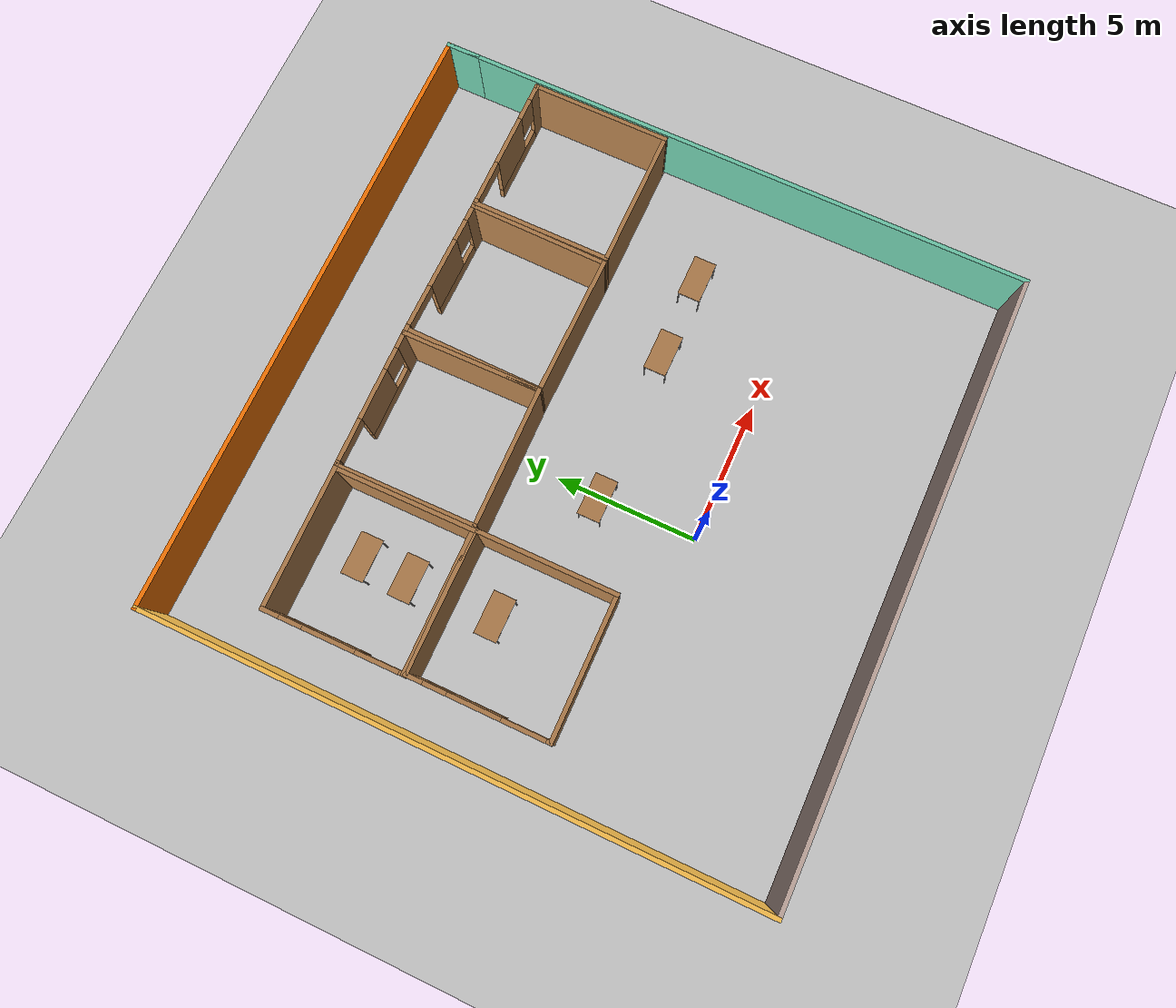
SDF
<sdf version="1.6">
 <world name="default">
  <model name="ground_plane">
   <static>1</static>
   <link name="link">
    <collision name="collision">
     <geometry><plane><normal>0 0 1</normal><size>100 100</size></plane></geometry>
     <surface>
      <contact><collide_bitmask>65535</collide_bitmask></contact>
      <friction><ode><mu>100</mu><mu2>50</mu2></ode></friction>
     </surface>
    </collision>
    <visual name="visual">
     <cast_shadows>0</cast_shadows>
     <geometry><plane><normal>0 0 1</normal><size>100 100</size></plane></geometry>
     <material>
      <script><uri>file://media/materials/scripts/gazebo.material</uri><name>Gazebo/Grey</name></script>
     </material>
    </visual>
   </link>
  </model>
  <model name="studio">
   <pose>9.41356 8.87492 0 0 -0 3.14131</pose>
   <link name="Wall_10">
    <collision name="Wall_10_Collision">
     <geometry><box><size>5 0.15 2.5</size></box></geometry>
     <pose>0 0 1.25 0 -0 0</pose>
    </collision>
    <visual name="Wall_10_Visual">
     <pose>0 0 1.25 0 -0 0</pose>
     <geometry><box><size>5 0.15 2.5</size></box></geometry>
     <material>
      <script><uri>file://media/materials/scripts/gazebo.material</uri><name>Gazebo/Wood</name></script>
      <ambient>1 1 1 1</ambient>
     </material>
     <meta><layer>0</layer></meta>
    </visual>
    <pose>0 2.42482 0 0 0 -7.3e-05</pose>
   </link>
   <link name="Wall_13">
    <collision name="Wall_13_Collision">
     <geometry><box><size>5 0.15 2.5</size></box></geometry>
     <pose>0 0 1.25 0 -0 0</pose>
    </collision>
    <visual name="Wall_13_Visual">
     <pose>0 0 1.25 0 -0 0</pose>
     <geometry><box><size>5 0.15 2.5</size></box></geometry>
     <material>
      <script><uri>file://media/materials/scripts/gazebo.material</uri><name>Gazebo/Wood</name></script>
      <ambient>1 1 1 1</ambient>
     </material>
     <meta><layer>0</layer></meta>
    </visual>
    <pose>-2.42502 -3e-06 0 0 0 -1.5708</pose>
   </link>
   <link name="Wall_15">
    <pose>-2e-05 -2.425 0 0 -0 0</pose>
    <visual name="Wall_15_Visual_0">
     <pose>-2.17395 0 1.25 0 -0 0</pose>
     <geometry><box><size>0.652095 0.15 2.5</size></box></geometry>
     <material>
      <script><uri>file://media/materials/scripts/gazebo.material</uri><name>Gazebo/Wood</name></script>
      <ambient>1 1 1 1</ambient>
     </material>
     <meta><layer>0</layer></meta>
    </visual>
    <collision name="Wall_15_Collision_0">
     <geometry><box><size>0.652095 0.15 2.5</size></box></geometry>
     <pose>-2.17395 0 1.25 0 -0 0</pose>
    </collision>
    <visual name="Wall_15_Visual_1">
     <pose>2.38574 0 1.25 0 -0 0</pose>
     <geometry><box><size>0.228515 0.15 2.5</size></box></geometry>
     <material>
      <script><uri>file://media/materials/scripts/gazebo.material</uri><name>Gazebo/Wood</name></script>
      <ambient>1 1 1 1</ambient>
     </material>
     <meta><layer>0</layer></meta>
    </visual>
    <collision name="Wall_15_Collision_1">
     <geometry><box><size>0.228515 0.15 2.5</size></box></geometry>
     <pose>2.38574 0 1.25 0 -0 0</pose>
    </collision>
    <visual name="Wall_15_Visual_2">
     <pose>-0.53821 0 0.25 0 -0 0</pose>
     <geometry><box><size>2.61939 0.15 0.5</size></box></geometry>
     <material>
      <script><uri>file://media/materials/scripts/gazebo.material</uri><name>Gazebo/Wood</name></script>
      <ambient>1 1 1 1</ambient>
     </material>
     <meta><layer>0</layer></meta>
    </visual>
    <collision name="Wall_15_Collision_2">
     <geometry><box><size>2.61939 0.15 0.5</size></box></geometry>
     <pose>-0.53821 0 0.25 0 -0 0</pose>
    </collision>
    <visual name="Wall_15_Visual_3">
     <pose>-0.13821 0 1.5 0 -0 0</pose>
     <geometry><box><size>1.81939 0.15 2</size></box></geometry>
     <material>
      <script><uri>file://media/materials/scripts/gazebo.material</uri><name>Gazebo/Wood</name></script>
      <ambient>1 1 1 1</ambient>
     </material>
     <meta><layer>0</layer></meta>
    </visual>
    <collision name="Wall_15_Collision_3">
     <geometry><box><size>1.81939 0.15 2</size></box></geometry>
     <pose>-0.13821 0 1.5 0 -0 0</pose>
    </collision>
    <visual name="Wall_15_Visual_4">
     <pose>-1.4479 0 1.9 0 -0 0</pose>
     <geometry><box><size>0.8 0.15 1.2</size></box></geometry>
     <material>
      <script><uri>file://media/materials/scripts/gazebo.material</uri><name>Gazebo/Wood</name></script>
      <ambient>1 1 1 1</ambient>
     </material>
     <meta><layer>0</layer></meta>
    </visual>
    <collision name="Wall_15_Collision_4">
     <geometry><box><size>0.8 0.15 1.2</size></box></geometry>
     <pose>-1.4479 0 1.9 0 -0 0</pose>
    </collision>
    <visual name="Wall_15_Visual_5">
     <pose>1.52148 0 2.25 0 -0 0</pose>
     <geometry><box><size>1.5 0.15 0.5</size></box></geometry>
     <material>
      <script><uri>file://media/materials/scripts/gazebo.material</uri><name>Gazebo/Wood</name></script>
      <ambient>1 1 1 1</ambient>
     </material>
     <meta><layer>0</layer></meta>
    </visual>
    <collision name="Wall_15_Collision_5">
     <geometry><box><size>1.5 0.15 0.5</size></box></geometry>
     <pose>1.52148 0 2.25 0 -0 0</pose>
    </collision>
   </link>
   <link name="Wall_16">
    <collision name="Wall_16_Collision">
     <geometry><box><size>4.99965 0.15 2.5</size></box></geometry>
     <pose>0 0 1.25 0 -0 0</pose>
    </collision>
    <visual name="Wall_16_Visual">
     <pose>0 0 1.25 0 -0 0</pose>
     <geometry><box><size>4.99965 0.15 2.5</size></box></geometry>
     <material>
      <script><uri>file://media/materials/scripts/gazebo.material</uri><name>Gazebo/Wood</name></script>
      <ambient>1 1 1 1</ambient>
     </material>
     <meta><layer>0</layer></meta>
    </visual>
    <pose>2.425 -0.00018 0 0 -0 1.57079</pose>
   </link>
   <static>1</static>
  </model>
  <model name="studio_0">
   <pose>4.40677 8.90584 0 0 -0 3.12886</pose>
   <link name="Wall_10">
    <collision name="Wall_10_Collision">
     <geometry><box><size>5 0.15 2.5</size></box></geometry>
     <pose>0 0 1.25 0 -0 0</pose>
    </collision>
    <visual name="Wall_10_Visual">
     <pose>0 0 1.25 0 -0 0</pose>
     <geometry><box><size>5 0.15 2.5</size></box></geometry>
     <material>
      <script><uri>file://media/materials/scripts/gazebo.material</uri><name>Gazebo/Wood</name></script>
      <ambient>1 1 1 1</ambient>
     </material>
     <meta><layer>0</layer></meta>
    </visual>
    <pose>0 2.42482 0 0 0 -7.3e-05</pose>
   </link>
   <link name="Wall_13">
    <collision name="Wall_13_Collision">
     <geometry><box><size>5 0.15 2.5</size></box></geometry>
     <pose>0 0 1.25 0 -0 0</pose>
    </collision>
    <visual name="Wall_13_Visual">
     <pose>0 0 1.25 0 -0 0</pose>
     <geometry><box><size>5 0.15 2.5</size></box></geometry>
     <material>
      <script><uri>file://media/materials/scripts/gazebo.material</uri><name>Gazebo/Wood</name></script>
      <ambient>1 1 1 1</ambient>
     </material>
     <meta><layer>0</layer></meta>
    </visual>
    <pose>-2.42502 -3e-06 0 0 0 -1.5708</pose>
   </link>
   <link name="Wall_15">
    <pose>-2e-05 -2.425 0 0 -0 0</pose>
    <visual name="Wall_15_Visual_0">
     <pose>-2.17395 0 1.25 0 -0 0</pose>
     <geometry><box><size>0.652095 0.15 2.5</size></box></geometry>
     <material>
      <script><uri>file://media/materials/scripts/gazebo.material</uri><name>Gazebo/Wood</name></script>
      <ambient>1 1 1 1</ambient>
     </material>
     <meta><layer>0</layer></meta>
    </visual>
    <collision name="Wall_15_Collision_0">
     <geometry><box><size>0.652095 0.15 2.5</size></box></geometry>
     <pose>-2.17395 0 1.25 0 -0 0</pose>
    </collision>
    <visual name="Wall_15_Visual_1">
     <pose>2.38574 0 1.25 0 -0 0</pose>
     <geometry><box><size>0.228515 0.15 2.5</size></box></geometry>
     <material>
      <script><uri>file://media/materials/scripts/gazebo.material</uri><name>Gazebo/Wood</name></script>
      <ambient>1 1 1 1</ambient>
     </material>
     <meta><layer>0</layer></meta>
    </visual>
    <collision name="Wall_15_Collision_1">
     <geometry><box><size>0.228515 0.15 2.5</size></box></geometry>
     <pose>2.38574 0 1.25 0 -0 0</pose>
    </collision>
    <visual name="Wall_15_Visual_2">
     <pose>-0.53821 0 0.25 0 -0 0</pose>
     <geometry><box><size>2.61939 0.15 0.5</size></box></geometry>
     <material>
      <script><uri>file://media/materials/scripts/gazebo.material</uri><name>Gazebo/Wood</name></script>
      <ambient>1 1 1 1</ambient>
     </material>
     <meta><layer>0</layer></meta>
    </visual>
    <collision name="Wall_15_Collision_2">
     <geometry><box><size>2.61939 0.15 0.5</size></box></geometry>
     <pose>-0.53821 0 0.25 0 -0 0</pose>
    </collision>
    <visual name="Wall_15_Visual_3">
     <pose>-0.13821 0 1.5 0 -0 0</pose>
     <geometry><box><size>1.81939 0.15 2</size></box></geometry>
     <material>
      <script><uri>file://media/materials/scripts/gazebo.material</uri><name>Gazebo/Wood</name></script>
      <ambient>1 1 1 1</ambient>
     </material>
     <meta><layer>0</layer></meta>
    </visual>
    <collision name="Wall_15_Collision_3">
     <geometry><box><size>1.81939 0.15 2</size></box></geometry>
     <pose>-0.13821 0 1.5 0 -0 0</pose>
    </collision>
    <visual name="Wall_15_Visual_4">
     <pose>-1.4479 0 1.9 0 -0 0</pose>
     <geometry><box><size>0.8 0.15 1.2</size></box></geometry>
     <material>
      <script><uri>file://media/materials/scripts/gazebo.material</uri><name>Gazebo/Wood</name></script>
      <ambient>1 1 1 1</ambient>
     </material>
     <meta><layer>0</layer></meta>
    </visual>
    <collision name="Wall_15_Collision_4">
     <geometry><box><size>0.8 0.15 1.2</size></box></geometry>
     <pose>-1.4479 0 1.9 0 -0 0</pose>
    </collision>
    <visual name="Wall_15_Visual_5">
     <pose>1.52148 0 2.25 0 -0 0</pose>
     <geometry><box><size>1.5 0.15 0.5</size></box></geometry>
     <material>
      <script><uri>file://media/materials/scripts/gazebo.material</uri><name>Gazebo/Wood</name></script>
      <ambient>1 1 1 1</ambient>
     </material>
     <meta><layer>0</layer></meta>
    </visual>
    <collision name="Wall_15_Collision_5">
     <geometry><box><size>1.5 0.15 0.5</size></box></geometry>
     <pose>1.52148 0 2.25 0 -0 0</pose>
    </collision>
   </link>
   <link name="Wall_16">
    <collision name="Wall_16_Collision">
     <geometry><box><size>4.99965 0.15 2.5</size></box></geometry>
     <pose>0 0 1.25 0 -0 0</pose>
    </collision>
    <visual name="Wall_16_Visual">
     <pose>0 0 1.25 0 -0 0</pose>
     <geometry><box><size>4.99965 0.15 2.5</size></box></geometry>
     <material>
      <script><uri>file://media/materials/scripts/gazebo.material</uri><name>Gazebo/Wood</name></script>
      <ambient>1 1 1 1</ambient>
     </material>
     <meta><layer>0</layer></meta>
    </visual>
    <pose>2.425 -0.00018 0 0 -0 1.57079</pose>
   </link>
   <static>1</static>
  </model>
  <model name="studio_1">
   <pose>-0.535475 8.90662 0 0 0 -3.12868</pose>
   <link name="Wall_10">
    <collision name="Wall_10_Collision">
     <geometry><box><size>5 0.15 2.5</size></box></geometry>
     <pose>0 0 1.25 0 -0 0</pose>
    </collision>
    <visual name="Wall_10_Visual">
     <pose>0 0 1.25 0 -0 0</pose>
     <geometry><box><size>5 0.15 2.5</size></box></geometry>
     <material>
      <script><uri>file://media/materials/scripts/gazebo.material</uri><name>Gazebo/Wood</name></script>
      <ambient>1 1 1 1</ambient>
     </material>
     <meta><layer>0</layer></meta>
    </visual>
    <pose>0 2.42482 0 0 0 -7.3e-05</pose>
   </link>
   <link name="Wall_13">
    <collision name="Wall_13_Collision">
     <geometry><box><size>5 0.15 2.5</size></box></geometry>
     <pose>0 0 1.25 0 -0 0</pose>
    </collision>
    <visual name="Wall_13_Visual">
     <pose>0 0 1.25 0 -0 0</pose>
     <geometry><box><size>5 0.15 2.5</size></box></geometry>
     <material>
      <script><uri>file://media/materials/scripts/gazebo.material</uri><name>Gazebo/Wood</name></script>
      <ambient>1 1 1 1</ambient>
     </material>
     <meta><layer>0</layer></meta>
    </visual>
    <pose>-2.42502 -3e-06 0 0 0 -1.5708</pose>
   </link>
   <link name="Wall_15">
    <pose>-2e-05 -2.425 0 0 -0 0</pose>
    <visual name="Wall_15_Visual_0">
     <pose>-2.17395 0 1.25 0 -0 0</pose>
     <geometry><box><size>0.652095 0.15 2.5</size></box></geometry>
     <material>
      <script><uri>file://media/materials/scripts/gazebo.material</uri><name>Gazebo/Wood</name></script>
      <ambient>1 1 1 1</ambient>
     </material>
     <meta><layer>0</layer></meta>
    </visual>
    <collision name="Wall_15_Collision_0">
     <geometry><box><size>0.652095 0.15 2.5</size></box></geometry>
     <pose>-2.17395 0 1.25 0 -0 0</pose>
    </collision>
    <visual name="Wall_15_Visual_1">
     <pose>2.38574 0 1.25 0 -0 0</pose>
     <geometry><box><size>0.228515 0.15 2.5</size></box></geometry>
     <material>
      <script><uri>file://media/materials/scripts/gazebo.material</uri><name>Gazebo/Wood</name></script>
      <ambient>1 1 1 1</ambient>
     </material>
     <meta><layer>0</layer></meta>
    </visual>
    <collision name="Wall_15_Collision_1">
     <geometry><box><size>0.228515 0.15 2.5</size></box></geometry>
     <pose>2.38574 0 1.25 0 -0 0</pose>
    </collision>
    <visual name="Wall_15_Visual_2">
     <pose>-0.53821 0 0.25 0 -0 0</pose>
     <geometry><box><size>2.61939 0.15 0.5</size></box></geometry>
     <material>
      <script><uri>file://media/materials/scripts/gazebo.material</uri><name>Gazebo/Wood</name></script>
      <ambient>1 1 1 1</ambient>
     </material>
     <meta><layer>0</layer></meta>
    </visual>
    <collision name="Wall_15_Collision_2">
     <geometry><box><size>2.61939 0.15 0.5</size></box></geometry>
     <pose>-0.53821 0 0.25 0 -0 0</pose>
    </collision>
    <visual name="Wall_15_Visual_3">
     <pose>-0.13821 0 1.5 0 -0 0</pose>
     <geometry><box><size>1.81939 0.15 2</size></box></geometry>
     <material>
      <script><uri>file://media/materials/scripts/gazebo.material</uri><name>Gazebo/Wood</name></script>
      <ambient>1 1 1 1</ambient>
     </material>
     <meta><layer>0</layer></meta>
    </visual>
    <collision name="Wall_15_Collision_3">
     <geometry><box><size>1.81939 0.15 2</size></box></geometry>
     <pose>-0.13821 0 1.5 0 -0 0</pose>
    </collision>
    <visual name="Wall_15_Visual_4">
     <pose>-1.4479 0 1.9 0 -0 0</pose>
     <geometry><box><size>0.8 0.15 1.2</size></box></geometry>
     <material>
      <script><uri>file://media/materials/scripts/gazebo.material</uri><name>Gazebo/Wood</name></script>
      <ambient>1 1 1 1</ambient>
     </material>
     <meta><layer>0</layer></meta>
    </visual>
    <collision name="Wall_15_Collision_4">
     <geometry><box><size>0.8 0.15 1.2</size></box></geometry>
     <pose>-1.4479 0 1.9 0 -0 0</pose>
    </collision>
    <visual name="Wall_15_Visual_5">
     <pose>1.52148 0 2.25 0 -0 0</pose>
     <geometry><box><size>1.5 0.15 0.5</size></box></geometry>
     <material>
      <script><uri>file://media/materials/scripts/gazebo.material</uri><name>Gazebo/Wood</name></script>
      <ambient>1 1 1 1</ambient>
     </material>
     <meta><layer>0</layer></meta>
    </visual>
    <collision name="Wall_15_Collision_5">
     <geometry><box><size>1.5 0.15 0.5</size></box></geometry>
     <pose>1.52148 0 2.25 0 -0 0</pose>
    </collision>
   </link>
   <link name="Wall_16">
    <collision name="Wall_16_Collision">
     <geometry><box><size>4.99965 0.15 2.5</size></box></geometry>
     <pose>0 0 1.25 0 -0 0</pose>
    </collision>
    <visual name="Wall_16_Visual">
     <pose>0 0 1.25 0 -0 0</pose>
     <geometry><box><size>4.99965 0.15 2.5</size></box></geometry>
     <material>
      <script><uri>file://media/materials/scripts/gazebo.material</uri><name>Gazebo/Wood</name></script>
      <ambient>1 1 1 1</ambient>
     </material>
     <meta><layer>0</layer></meta>
    </visual>
    <pose>2.425 -0.00018 0 0 -0 1.57079</pose>
   </link>
   <static>1</static>
  </model>
  <model name="table_11">
   <static>1</static>
   <link name="link">
    <collision name="surface">
     <pose>0 0 1 0 -0 0</pose>
     <geometry><box><size>1.5 0.8 0.03</size></box></geometry>
     <surface><friction><ode><mu>0.6</mu><mu2>0.6</mu2></ode></friction></surface>
    </collision>
    <visual name="visual1">
     <pose>0 0 1 0 -0 0</pose>
     <geometry><box><size>1.5 0.8 0.03</size></box></geometry>
     <material>
      <script><uri>file://media/materials/scripts/gazebo.material</uri><name>Gazebo/Wood</name></script>
     </material>
    </visual>
    <collision name="front_left_leg">
     <pose>0.68 0.38 0.5 0 -0 0</pose>
     <geometry><cylinder><radius>0.02</radius><length>1</length></cylinder></geometry>
    </collision>
    <visual name="front_left_leg">
     <pose>0.68 0.38 0.5 0 -0 0</pose>
     <geometry><cylinder><radius>0.02</radius><length>1</length></cylinder></geometry>
     <material>
      <script><uri>file://media/materials/scripts/gazebo.material</uri><name>Gazebo/Grey</name></script>
     </material>
    </visual>
    <collision name="front_right_leg">
     <pose>0.68 -0.38 0.5 0 -0 0</pose>
     <geometry><cylinder><radius>0.02</radius><length>1</length></cylinder></geometry>
    </collision>
    <visual name="front_right_leg">
     <pose>0.68 -0.38 0.5 0 -0 0</pose>
     <geometry><cylinder><radius>0.02</radius><length>1</length></cylinder></geometry>
     <material>
      <script><uri>file://media/materials/scripts/gazebo.material</uri><name>Gazebo/Grey</name></script>
     </material>
    </visual>
    <collision name="back_right_leg">
     <pose>-0.68 -0.38 0.5 0 -0 0</pose>
     <geometry><cylinder><radius>0.02</radius><length>1</length></cylinder></geometry>
    </collision>
    <visual name="back_right_leg">
     <pose>-0.68 -0.38 0.5 0 -0 0</pose>
     <geometry><cylinder><radius>0.02</radius><length>1</length></cylinder></geometry>
     <material>
      <script><uri>file://media/materials/scripts/gazebo.material</uri><name>Gazebo/Grey</name></script>
     </material>
    </visual>
    <collision name="back_left_leg">
     <pose>-0.68 0.38 0.5 0 -0 0</pose>
     <geometry><cylinder><radius>0.02</radius><length>1</length></cylinder></geometry>
    </collision>
    <visual name="back_left_leg">
     <pose>-0.68 0.38 0.5 0 -0 0</pose>
     <geometry><cylinder><radius>0.02</radius><length>1</length></cylinder></geometry>
     <material>
      <script><uri>file://media/materials/scripts/gazebo.material</uri><name>Gazebo/Grey</name></script>
     </material>
    </visual>
   </link>
   <pose>8.2006 3.53979 0 0 -0 0</pose>
  </model>
  <model name="table_15">
   <static>1</static>
   <link name="link">
    <collision name="surface">
     <pose>0 0 1 0 -0 0</pose>
     <geometry><box><size>1.5 0.8 0.03</size></box></geometry>
     <surface><friction><ode><mu>0.6</mu><mu2>0.6</mu2></ode></friction></surface>
    </collision>
    <visual name="visual1">
     <pose>0 0 1 0 -0 0</pose>
     <geometry><box><size>1.5 0.8 0.03</size></box></geometry>
     <material>
      <script><uri>file://media/materials/scripts/gazebo.material</uri><name>Gazebo/Wood</name></script>
     </material>
    </visual>
    <collision name="front_left_leg">
     <pose>0.68 0.38 0.5 0 -0 0</pose>
     <geometry><cylinder><radius>0.02</radius><length>1</length></cylinder></geometry>
    </collision>
    <visual name="front_left_leg">
     <pose>0.68 0.38 0.5 0 -0 0</pose>
     <geometry><cylinder><radius>0.02</radius><length>1</length></cylinder></geometry>
     <material>
      <script><uri>file://media/materials/scripts/gazebo.material</uri><name>Gazebo/Grey</name></script>
     </material>
    </visual>
    <collision name="front_right_leg">
     <pose>0.68 -0.38 0.5 0 -0 0</pose>
     <geometry><cylinder><radius>0.02</radius><length>1</length></cylinder></geometry>
    </collision>
    <visual name="front_right_leg">
     <pose>0.68 -0.38 0.5 0 -0 0</pose>
     <geometry><cylinder><radius>0.02</radius><length>1</length></cylinder></geometry>
     <material>
      <script><uri>file://media/materials/scripts/gazebo.material</uri><name>Gazebo/Grey</name></script>
     </material>
    </visual>
    <collision name="back_right_leg">
     <pose>-0.68 -0.38 0.5 0 -0 0</pose>
     <geometry><cylinder><radius>0.02</radius><length>1</length></cylinder></geometry>
    </collision>
    <visual name="back_right_leg">
     <pose>-0.68 -0.38 0.5 0 -0 0</pose>
     <geometry><cylinder><radius>0.02</radius><length>1</length></cylinder></geometry>
     <material>
      <script><uri>file://media/materials/scripts/gazebo.material</uri><name>Gazebo/Grey</name></script>
     </material>
    </visual>
    <collision name="back_left_leg">
     <pose>-0.68 0.38 0.5 0 -0 0</pose>
     <geometry><cylinder><radius>0.02</radius><length>1</length></cylinder></geometry>
    </collision>
    <visual name="back_left_leg">
     <pose>-0.68 0.38 0.5 0 -0 0</pose>
     <geometry><cylinder><radius>0.02</radius><length>1</length></cylinder></geometry>
     <material>
      <script><uri>file://media/materials/scripts/gazebo.material</uri><name>Gazebo/Grey</name></script>
     </material>
    </visual>
   </link>
   <pose>5.26825 3.52287 0 0 -0 0</pose>
  </model>
  <model name="table_23">
   <static>1</static>
   <link name="link">
    <collision name="surface">
     <pose>0 0 1 0 -0 0</pose>
     <geometry><box><size>1.5 0.8 0.03</size></box></geometry>
     <surface><friction><ode><mu>0.6</mu><mu2>0.6</mu2></ode></friction></surface>
    </collision>
    <visual name="visual1">
     <pose>0 0 1 0 -0 0</pose>
     <geometry><box><size>1.5 0.8 0.03</size></box></geometry>
     <material>
      <script><uri>file://media/materials/scripts/gazebo.material</uri><name>Gazebo/Wood</name></script>
     </material>
    </visual>
    <collision name="front_left_leg">
     <pose>0.68 0.38 0.5 0 -0 0</pose>
     <geometry><cylinder><radius>0.02</radius><length>1</length></cylinder></geometry>
    </collision>
    <visual name="front_left_leg">
     <pose>0.68 0.38 0.5 0 -0 0</pose>
     <geometry><cylinder><radius>0.02</radius><length>1</length></cylinder></geometry>
     <material>
      <script><uri>file://media/materials/scripts/gazebo.material</uri><name>Gazebo/Grey</name></script>
     </material>
    </visual>
    <collision name="front_right_leg">
     <pose>0.68 -0.38 0.5 0 -0 0</pose>
     <geometry><cylinder><radius>0.02</radius><length>1</length></cylinder></geometry>
    </collision>
    <visual name="front_right_leg">
     <pose>0.68 -0.38 0.5 0 -0 0</pose>
     <geometry><cylinder><radius>0.02</radius><length>1</length></cylinder></geometry>
     <material>
      <script><uri>file://media/materials/scripts/gazebo.material</uri><name>Gazebo/Grey</name></script>
     </material>
    </visual>
    <collision name="back_right_leg">
     <pose>-0.68 -0.38 0.5 0 -0 0</pose>
     <geometry><cylinder><radius>0.02</radius><length>1</length></cylinder></geometry>
    </collision>
    <visual name="back_right_leg">
     <pose>-0.68 -0.38 0.5 0 -0 0</pose>
     <geometry><cylinder><radius>0.02</radius><length>1</length></cylinder></geometry>
     <material>
      <script><uri>file://media/materials/scripts/gazebo.material</uri><name>Gazebo/Grey</name></script>
     </material>
    </visual>
    <collision name="back_left_leg">
     <pose>-0.68 0.38 0.5 0 -0 0</pose>
     <geometry><cylinder><radius>0.02</radius><length>1</length></cylinder></geometry>
    </collision>
    <visual name="back_left_leg">
     <pose>-0.68 0.38 0.5 0 -0 0</pose>
     <geometry><cylinder><radius>0.02</radius><length>1</length></cylinder></geometry>
     <material>
      <script><uri>file://media/materials/scripts/gazebo.material</uri><name>Gazebo/Grey</name></script>
     </material>
    </visual>
   </link>
   <pose>-0.229884 3.45947 0 0 -0 0</pose>
  </model>
  <model name="color_wall">
   <pose>1.2412 4.1288 0 0 -0 0</pose>
   <link name="Wall_17">
    <collision name="Wall_17_Collision">
     <geometry><box><size>21.25 0.15 2.5</size></box></geometry>
     <pose>0 0 1.25 0 -0 0</pose>
    </collision>
    <visual name="Wall_17_Visual">
     <pose>0 0 1.25 0 -0 0</pose>
     <geometry><box><size>21.25 0.15 2.5</size></box></geometry>
     <material>
      <script><uri>file://media/materials/scripts/gazebo.material</uri><name>Gazebo/Grey</name></script>
      <ambient>0.435294 0.796078 0.67451 1</ambient>
     </material>
     <meta><layer>0</layer></meta>
    </visual>
    <pose>10.8 -0.125 0 0 0 -1.5708</pose>
   </link>
   <link name="Wall_18">
    <collision name="Wall_18_Collision">
     <geometry><box><size>21.75 0.15 2.5</size></box></geometry>
     <pose>0 0 1.25 0 -0 0</pose>
    </collision>
    <visual name="Wall_18_Visual">
     <pose>0 0 1.25 0 -0 0</pose>
     <geometry><box><size>21.75 0.15 2.5</size></box></geometry>
     <material>
      <script><uri>file://media/materials/scripts/gazebo.material</uri><name>Gazebo/Grey</name></script>
      <ambient>0.760784 0.662745 0.627451 1</ambient>
     </material>
     <meta><layer>0</layer></meta>
    </visual>
    <pose>0 -10.675 0 0 -0 3.14159</pose>
   </link>
   <link name="Wall_19">
    <collision name="Wall_19_Collision">
     <geometry><box><size>21.5 0.15 2.5</size></box></geometry>
     <pose>0 0 1.25 0 -0 0</pose>
    </collision>
    <visual name="Wall_19_Visual">
     <pose>0 0 1.25 0 -0 0</pose>
     <geometry><box><size>21.5 0.15 2.5</size></box></geometry>
     <material>
      <script><uri>file://media/materials/scripts/gazebo.material</uri><name>Gazebo/Grey</name></script>
      <ambient>1 0.764706 0.305882 1</ambient>
     </material>
     <meta><layer>0</layer></meta>
    </visual>
    <pose>-10.8 0 0 0 -0 1.5708</pose>
   </link>
   <link name="Wall_20">
    <collision name="Wall_20_Collision">
     <geometry><box><size>21.75 0.15 2.5</size></box></geometry>
     <pose>0 0 1.25 0 -0 0</pose>
    </collision>
    <visual name="Wall_20_Visual">
     <pose>0 0 1.25 0 -0 0</pose>
     <geometry><box><size>21.75 0.15 2.5</size></box></geometry>
     <material>
      <script><uri>file://media/materials/scripts/gazebo.material</uri><name>Gazebo/Grey</name></script>
      <ambient>0.996078 0.47451 0.0196078 1</ambient>
     </material>
     <meta><layer>0</layer></meta>
    </visual>
    <pose>0 10.675 0 0 -0 0</pose>
   </link>
   <link name="Wall_21">
    <collision name="Wall_21_Collision">
     <geometry><box><size>1.25 0.15 2.5</size></box></geometry>
     <pose>0 0 1.25 0 -0 0</pose>
    </collision>
    <visual name="Wall_21_Visual">
     <pose>0 0 1.25 0 -0 0</pose>
     <geometry><box><size>1.25 0.15 2.5</size></box></geometry>
     <material>
      <script><uri>file://media/materials/scripts/gazebo.material</uri><name>Gazebo/Grey</name></script>
      <ambient>0.435294 0.796078 0.67451 1</ambient>
     </material>
     <meta><layer>0</layer></meta>
    </visual>
    <pose>10.8 10.125 0 0 0 -1.5708</pose>
   </link>
   <static>1</static>
  </model>
  <model name="studio_1_clone">
   <pose>-5.50582 8.84179 0 0 0 -1.56218</pose>
   <link name="Wall_10">
    <collision name="Wall_10_Collision">
     <geometry><box><size>5 0.15 2.5</size></box></geometry>
     <pose>0 0 1.25 0 -0 0</pose>
    </collision>
    <visual name="Wall_10_Visual">
     <pose>0 0 1.25 0 -0 0</pose>
     <geometry><box><size>5 0.15 2.5</size></box></geometry>
     <material>
      <script><uri>file://media/materials/scripts/gazebo.material</uri><name>Gazebo/Wood</name></script>
      <ambient>1 1 1 1</ambient>
     </material>
     <meta><layer>0</layer></meta>
    </visual>
    <pose>0 2.42482 0 0 0 -7.3e-05</pose>
   </link>
   <link name="Wall_13">
    <collision name="Wall_13_Collision">
     <geometry><box><size>5 0.15 2.5</size></box></geometry>
     <pose>0 0 1.25 0 -0 0</pose>
    </collision>
    <visual name="Wall_13_Visual">
     <pose>0 0 1.25 0 -0 0</pose>
     <geometry><box><size>5 0.15 2.5</size></box></geometry>
     <material>
      <script><uri>file://media/materials/scripts/gazebo.material</uri><name>Gazebo/Wood</name></script>
      <ambient>1 1 1 1</ambient>
     </material>
     <meta><layer>0</layer></meta>
    </visual>
    <pose>-2.42502 -3e-06 0 0 0 -1.5708</pose>
   </link>
   <link name="Wall_15">
    <pose>-2e-05 -2.425 0 0 -0 0</pose>
    <visual name="Wall_15_Visual_0">
     <pose>-2.17395 0 1.25 0 -0 0</pose>
     <geometry><box><size>0.652095 0.15 2.5</size></box></geometry>
     <material>
      <script><uri>file://media/materials/scripts/gazebo.material</uri><name>Gazebo/Wood</name></script>
      <ambient>1 1 1 1</ambient>
     </material>
     <meta><layer>0</layer></meta>
    </visual>
    <collision name="Wall_15_Collision_0">
     <geometry><box><size>0.652095 0.15 2.5</size></box></geometry>
     <pose>-2.17395 0 1.25 0 -0 0</pose>
    </collision>
    <visual name="Wall_15_Visual_1">
     <pose>2.38574 0 1.25 0 -0 0</pose>
     <geometry><box><size>0.228515 0.15 2.5</size></box></geometry>
     <material>
      <script><uri>file://media/materials/scripts/gazebo.material</uri><name>Gazebo/Wood</name></script>
      <ambient>1 1 1 1</ambient>
     </material>
     <meta><layer>0</layer></meta>
    </visual>
    <collision name="Wall_15_Collision_1">
     <geometry><box><size>0.228515 0.15 2.5</size></box></geometry>
     <pose>2.38574 0 1.25 0 -0 0</pose>
    </collision>
    <visual name="Wall_15_Visual_2">
     <pose>-0.53821 0 0.25 0 -0 0</pose>
     <geometry><box><size>2.61939 0.15 0.5</size></box></geometry>
     <material>
      <script><uri>file://media/materials/scripts/gazebo.material</uri><name>Gazebo/Wood</name></script>
      <ambient>1 1 1 1</ambient>
     </material>
     <meta><layer>0</layer></meta>
    </visual>
    <collision name="Wall_15_Collision_2">
     <geometry><box><size>2.61939 0.15 0.5</size></box></geometry>
     <pose>-0.53821 0 0.25 0 -0 0</pose>
    </collision>
    <visual name="Wall_15_Visual_3">
     <pose>-0.13821 0 1.5 0 -0 0</pose>
     <geometry><box><size>1.81939 0.15 2</size></box></geometry>
     <material>
      <script><uri>file://media/materials/scripts/gazebo.material</uri><name>Gazebo/Wood</name></script>
      <ambient>1 1 1 1</ambient>
     </material>
     <meta><layer>0</layer></meta>
    </visual>
    <collision name="Wall_15_Collision_3">
     <geometry><box><size>1.81939 0.15 2</size></box></geometry>
     <pose>-0.13821 0 1.5 0 -0 0</pose>
    </collision>
    <visual name="Wall_15_Visual_4">
     <pose>-1.4479 0 1.9 0 -0 0</pose>
     <geometry><box><size>0.8 0.15 1.2</size></box></geometry>
     <material>
      <script><uri>file://media/materials/scripts/gazebo.material</uri><name>Gazebo/Wood</name></script>
      <ambient>1 1 1 1</ambient>
     </material>
     <meta><layer>0</layer></meta>
    </visual>
    <collision name="Wall_15_Collision_4">
     <geometry><box><size>0.8 0.15 1.2</size></box></geometry>
     <pose>-1.4479 0 1.9 0 -0 0</pose>
    </collision>
    <visual name="Wall_15_Visual_5">
     <pose>1.52148 0 2.25 0 -0 0</pose>
     <geometry><box><size>1.5 0.15 0.5</size></box></geometry>
     <material>
      <script><uri>file://media/materials/scripts/gazebo.material</uri><name>Gazebo/Wood</name></script>
      <ambient>1 1 1 1</ambient>
     </material>
     <meta><layer>0</layer></meta>
    </visual>
    <collision name="Wall_15_Collision_5">
     <geometry><box><size>1.5 0.15 0.5</size></box></geometry>
     <pose>1.52148 0 2.25 0 -0 0</pose>
    </collision>
   </link>
   <link name="Wall_16">
    <collision name="Wall_16_Collision">
     <geometry><box><size>4.99965 0.15 2.5</size></box></geometry>
     <pose>0 0 1.25 0 -0 0</pose>
    </collision>
    <visual name="Wall_16_Visual">
     <pose>0 0 1.25 0 -0 0</pose>
     <geometry><box><size>4.99965 0.15 2.5</size></box></geometry>
     <material>
      <script><uri>file://media/materials/scripts/gazebo.material</uri><name>Gazebo/Wood</name></script>
      <ambient>1 1 1 1</ambient>
     </material>
     <meta><layer>0</layer></meta>
    </visual>
    <pose>2.425 -0.00018 0 0 -0 1.57079</pose>
   </link>
   <static>1</static>
  </model>
  <model name="studio_1_clone_clone">
   <pose>-5.4508 3.92581 0 0 0 -1.56723</pose>
   <link name="Wall_10">
    <collision name="Wall_10_Collision">
     <geometry><box><size>5 0.15 2.5</size></box></geometry>
     <pose>0 0 1.25 0 -0 0</pose>
    </collision>
    <visual name="Wall_10_Visual">
     <pose>0 0 1.25 0 -0 0</pose>
     <geometry><box><size>5 0.15 2.5</size></box></geometry>
     <material>
      <script><uri>file://media/materials/scripts/gazebo.material</uri><name>Gazebo/Wood</name></script>
      <ambient>1 1 1 1</ambient>
     </material>
     <meta><layer>0</layer></meta>
    </visual>
    <pose>0 2.42482 0 0 0 -7.3e-05</pose>
   </link>
   <link name="Wall_13">
    <collision name="Wall_13_Collision">
     <geometry><box><size>5 0.15 2.5</size></box></geometry>
     <pose>0 0 1.25 0 -0 0</pose>
    </collision>
    <visual name="Wall_13_Visual">
     <pose>0 0 1.25 0 -0 0</pose>
     <geometry><box><size>5 0.15 2.5</size></box></geometry>
     <material>
      <script><uri>file://media/materials/scripts/gazebo.material</uri><name>Gazebo/Wood</name></script>
      <ambient>1 1 1 1</ambient>
     </material>
     <meta><layer>0</layer></meta>
    </visual>
    <pose>-2.42502 -3e-06 0 0 0 -1.5708</pose>
   </link>
   <link name="Wall_15">
    <pose>-2e-05 -2.425 0 0 -0 0</pose>
    <visual name="Wall_15_Visual_0">
     <pose>-2.17395 0 1.25 0 -0 0</pose>
     <geometry><box><size>0.652095 0.15 2.5</size></box></geometry>
     <material>
      <script><uri>file://media/materials/scripts/gazebo.material</uri><name>Gazebo/Wood</name></script>
      <ambient>1 1 1 1</ambient>
     </material>
     <meta><layer>0</layer></meta>
    </visual>
    <collision name="Wall_15_Collision_0">
     <geometry><box><size>0.652095 0.15 2.5</size></box></geometry>
     <pose>-2.17395 0 1.25 0 -0 0</pose>
    </collision>
    <visual name="Wall_15_Visual_1">
     <pose>2.38574 0 1.25 0 -0 0</pose>
     <geometry><box><size>0.228515 0.15 2.5</size></box></geometry>
     <material>
      <script><uri>file://media/materials/scripts/gazebo.material</uri><name>Gazebo/Wood</name></script>
      <ambient>1 1 1 1</ambient>
     </material>
     <meta><layer>0</layer></meta>
    </visual>
    <collision name="Wall_15_Collision_1">
     <geometry><box><size>0.228515 0.15 2.5</size></box></geometry>
     <pose>2.38574 0 1.25 0 -0 0</pose>
    </collision>
    <visual name="Wall_15_Visual_2">
     <pose>-0.53821 0 0.25 0 -0 0</pose>
     <geometry><box><size>2.61939 0.15 0.5</size></box></geometry>
     <material>
      <script><uri>file://media/materials/scripts/gazebo.material</uri><name>Gazebo/Wood</name></script>
      <ambient>1 1 1 1</ambient>
     </material>
     <meta><layer>0</layer></meta>
    </visual>
    <collision name="Wall_15_Collision_2">
     <geometry><box><size>2.61939 0.15 0.5</size></box></geometry>
     <pose>-0.53821 0 0.25 0 -0 0</pose>
    </collision>
    <visual name="Wall_15_Visual_3">
     <pose>-0.13821 0 1.5 0 -0 0</pose>
     <geometry><box><size>1.81939 0.15 2</size></box></geometry>
     <material>
      <script><uri>file://media/materials/scripts/gazebo.material</uri><name>Gazebo/Wood</name></script>
      <ambient>1 1 1 1</ambient>
     </material>
     <meta><layer>0</layer></meta>
    </visual>
    <collision name="Wall_15_Collision_3">
     <geometry><box><size>1.81939 0.15 2</size></box></geometry>
     <pose>-0.13821 0 1.5 0 -0 0</pose>
    </collision>
    <visual name="Wall_15_Visual_4">
     <pose>-1.4479 0 1.9 0 -0 0</pose>
     <geometry><box><size>0.8 0.15 1.2</size></box></geometry>
     <material>
      <script><uri>file://media/materials/scripts/gazebo.material</uri><name>Gazebo/Wood</name></script>
      <ambient>1 1 1 1</ambient>
     </material>
     <meta><layer>0</layer></meta>
    </visual>
    <collision name="Wall_15_Collision_4">
     <geometry><box><size>0.8 0.15 1.2</size></box></geometry>
     <pose>-1.4479 0 1.9 0 -0 0</pose>
    </collision>
    <visual name="Wall_15_Visual_5">
     <pose>1.52148 0 2.25 0 -0 0</pose>
     <geometry><box><size>1.5 0.15 0.5</size></box></geometry>
     <material>
      <script><uri>file://media/materials/scripts/gazebo.material</uri><name>Gazebo/Wood</name></script>
      <ambient>1 1 1 1</ambient>
     </material>
     <meta><layer>0</layer></meta>
    </visual>
    <collision name="Wall_15_Collision_5">
     <geometry><box><size>1.5 0.15 0.5</size></box></geometry>
     <pose>1.52148 0 2.25 0 -0 0</pose>
    </collision>
   </link>
   <link name="Wall_16">
    <collision name="Wall_16_Collision">
     <geometry><box><size>4.99965 0.15 2.5</size></box></geometry>
     <pose>0 0 1.25 0 -0 0</pose>
    </collision>
    <visual name="Wall_16_Visual">
     <pose>0 0 1.25 0 -0 0</pose>
     <geometry><box><size>4.99965 0.15 2.5</size></box></geometry>
     <material>
      <script><uri>file://media/materials/scripts/gazebo.material</uri><name>Gazebo/Wood</name></script>
      <ambient>1 1 1 1</ambient>
     </material>
     <meta><layer>0</layer></meta>
    </visual>
    <pose>2.425 -0.00018 0 0 -0 1.57079</pose>
   </link>
   <static>1</static>
  </model>
  <model name="table_23_clone">
   <static>1</static>
   <link name="link">
    <collision name="surface">
     <pose>0 0 1 0 -0 0</pose>
     <geometry><box><size>1.5 0.8 0.03</size></box></geometry>
     <surface><friction><ode><mu>0.6</mu><mu2>0.6</mu2></ode></friction></surface>
    </collision>
    <visual name="visual1">
     <pose>0 0 1 0 -0 0</pose>
     <geometry><box><size>1.5 0.8 0.03</size></box></geometry>
     <material>
      <script><uri>file://media/materials/scripts/gazebo.material</uri><name>Gazebo/Wood</name></script>
     </material>
    </visual>
    <collision name="front_left_leg">
     <pose>0.68 0.38 0.5 0 -0 0</pose>
     <geometry><cylinder><radius>0.02</radius><length>1</length></cylinder></geometry>
    </collision>
    <visual name="front_left_leg">
     <pose>0.68 0.38 0.5 0 -0 0</pose>
     <geometry><cylinder><radius>0.02</radius><length>1</length></cylinder></geometry>
     <material>
      <script><uri>file://media/materials/scripts/gazebo.material</uri><name>Gazebo/Grey</name></script>
     </material>
    </visual>
    <collision name="front_right_leg">
     <pose>0.68 -0.38 0.5 0 -0 0</pose>
     <geometry><cylinder><radius>0.02</radius><length>1</length></cylinder></geometry>
    </collision>
    <visual name="front_right_leg">
     <pose>0.68 -0.38 0.5 0 -0 0</pose>
     <geometry><cylinder><radius>0.02</radius><length>1</length></cylinder></geometry>
     <material>
      <script><uri>file://media/materials/scripts/gazebo.material</uri><name>Gazebo/Grey</name></script>
     </material>
    </visual>
    <collision name="back_right_leg">
     <pose>-0.68 -0.38 0.5 0 -0 0</pose>
     <geometry><cylinder><radius>0.02</radius><length>1</length></cylinder></geometry>
    </collision>
    <visual name="back_right_leg">
     <pose>-0.68 -0.38 0.5 0 -0 0</pose>
     <geometry><cylinder><radius>0.02</radius><length>1</length></cylinder></geometry>
     <material>
      <script><uri>file://media/materials/scripts/gazebo.material</uri><name>Gazebo/Grey</name></script>
     </material>
    </visual>
    <collision name="back_left_leg">
     <pose>-0.68 0.38 0.5 0 -0 0</pose>
     <geometry><cylinder><radius>0.02</radius><length>1</length></cylinder></geometry>
    </collision>
    <visual name="back_left_leg">
     <pose>-0.68 0.38 0.5 0 -0 0</pose>
     <geometry><cylinder><radius>0.02</radius><length>1</length></cylinder></geometry>
     <material>
      <script><uri>file://media/materials/scripts/gazebo.material</uri><name>Gazebo/Grey</name></script>
     </material>
    </visual>
   </link>
   <pose>-5.10845 4.82313 0 0 -0 0</pose>
  </model>
  <model name="table_23_clone_3">
   <static>1</static>
   <link name="link">
    <collision name="surface">
     <pose>0 0 1 0 -0 0</pose>
     <geometry><box><size>1.5 0.8 0.03</size></box></geometry>
     <surface><friction><ode><mu>0.6</mu><mu2>0.6</mu2></ode></friction></surface>
    </collision>
    <visual name="visual1">
     <pose>0 0 1 0 -0 0</pose>
     <geometry><box><size>1.5 0.8 0.03</size></box></geometry>
     <material>
      <script><uri>file://media/materials/scripts/gazebo.material</uri><name>Gazebo/Wood</name></script>
     </material>
    </visual>
    <collision name="front_left_leg">
     <pose>0.68 0.38 0.5 0 -0 0</pose>
     <geometry><cylinder><radius>0.02</radius><length>1</length></cylinder></geometry>
    </collision>
    <visual name="front_left_leg">
     <pose>0.68 0.38 0.5 0 -0 0</pose>
     <geometry><cylinder><radius>0.02</radius><length>1</length></cylinder></geometry>
     <material>
      <script><uri>file://media/materials/scripts/gazebo.material</uri><name>Gazebo/Grey</name></script>
     </material>
    </visual>
    <collision name="front_right_leg">
     <pose>0.68 -0.38 0.5 0 -0 0</pose>
     <geometry><cylinder><radius>0.02</radius><length>1</length></cylinder></geometry>
    </collision>
    <visual name="front_right_leg">
     <pose>0.68 -0.38 0.5 0 -0 0</pose>
     <geometry><cylinder><radius>0.02</radius><length>1</length></cylinder></geometry>
     <material>
      <script><uri>file://media/materials/scripts/gazebo.material</uri><name>Gazebo/Grey</name></script>
     </material>
    </visual>
    <collision name="back_right_leg">
     <pose>-0.68 -0.38 0.5 0 -0 0</pose>
     <geometry><cylinder><radius>0.02</radius><length>1</length></cylinder></geometry>
    </collision>
    <visual name="back_right_leg">
     <pose>-0.68 -0.38 0.5 0 -0 0</pose>
     <geometry><cylinder><radius>0.02</radius><length>1</length></cylinder></geometry>
     <material>
      <script><uri>file://media/materials/scripts/gazebo.material</uri><name>Gazebo/Grey</name></script>
     </material>
    </visual>
    <collision name="back_left_leg">
     <pose>-0.68 0.38 0.5 0 -0 0</pose>
     <geometry><cylinder><radius>0.02</radius><length>1</length></cylinder></geometry>
    </collision>
    <visual name="back_left_leg">
     <pose>-0.68 0.38 0.5 0 -0 0</pose>
     <geometry><cylinder><radius>0.02</radius><length>1</length></cylinder></geometry>
     <material>
      <script><uri>file://media/materials/scripts/gazebo.material</uri><name>Gazebo/Grey</name></script>
     </material>
    </visual>
   </link>
   <pose>-5.1738 9.56817 0 0 -0 0</pose>
  </model>
  <model name="table_23_clone_4">
   <static>1</static>
   <link name="link">
    <collision name="surface">
     <pose>0 0 1 0 -0 0</pose>
     <geometry><box><size>1.5 0.8 0.03</size></box></geometry>
     <surface><friction><ode><mu>0.6</mu><mu2>0.6</mu2></ode></friction></surface>
    </collision>
    <visual name="visual1">
     <pose>0 0 1 0 -0 0</pose>
     <geometry><box><size>1.5 0.8 0.03</size></box></geometry>
     <material>
      <script><uri>file://media/materials/scripts/gazebo.material</uri><name>Gazebo/Wood</name></script>
     </material>
    </visual>
    <collision name="front_left_leg">
     <pose>0.68 0.38 0.5 0 -0 0</pose>
     <geometry><cylinder><radius>0.02</radius><length>1</length></cylinder></geometry>
    </collision>
    <visual name="front_left_leg">
     <pose>0.68 0.38 0.5 0 -0 0</pose>
     <geometry><cylinder><radius>0.02</radius><length>1</length></cylinder></geometry>
     <material>
      <script><uri>file://media/materials/scripts/gazebo.material</uri><name>Gazebo/Grey</name></script>
     </material>
    </visual>
    <collision name="front_right_leg">
     <pose>0.68 -0.38 0.5 0 -0 0</pose>
     <geometry><cylinder><radius>0.02</radius><length>1</length></cylinder></geometry>
    </collision>
    <visual name="front_right_leg">
     <pose>0.68 -0.38 0.5 0 -0 0</pose>
     <geometry><cylinder><radius>0.02</radius><length>1</length></cylinder></geometry>
     <material>
      <script><uri>file://media/materials/scripts/gazebo.material</uri><name>Gazebo/Grey</name></script>
     </material>
    </visual>
    <collision name="back_right_leg">
     <pose>-0.68 -0.38 0.5 0 -0 0</pose>
     <geometry><cylinder><radius>0.02</radius><length>1</length></cylinder></geometry>
    </collision>
    <visual name="back_right_leg">
     <pose>-0.68 -0.38 0.5 0 -0 0</pose>
     <geometry><cylinder><radius>0.02</radius><length>1</length></cylinder></geometry>
     <material>
      <script><uri>file://media/materials/scripts/gazebo.material</uri><name>Gazebo/Grey</name></script>
     </material>
    </visual>
    <collision name="back_left_leg">
     <pose>-0.68 0.38 0.5 0 -0 0</pose>
     <geometry><cylinder><radius>0.02</radius><length>1</length></cylinder></geometry>
    </collision>
    <visual name="back_left_leg">
     <pose>-0.68 0.38 0.5 0 -0 0</pose>
     <geometry><cylinder><radius>0.02</radius><length>1</length></cylinder></geometry>
     <material>
      <script><uri>file://media/materials/scripts/gazebo.material</uri><name>Gazebo/Grey</name></script>
     </material>
    </visual>
   </link>
   <pose>-5.1738 7.89356 0 0 -0 0</pose>
  </model>
 </world>
</sdf>
